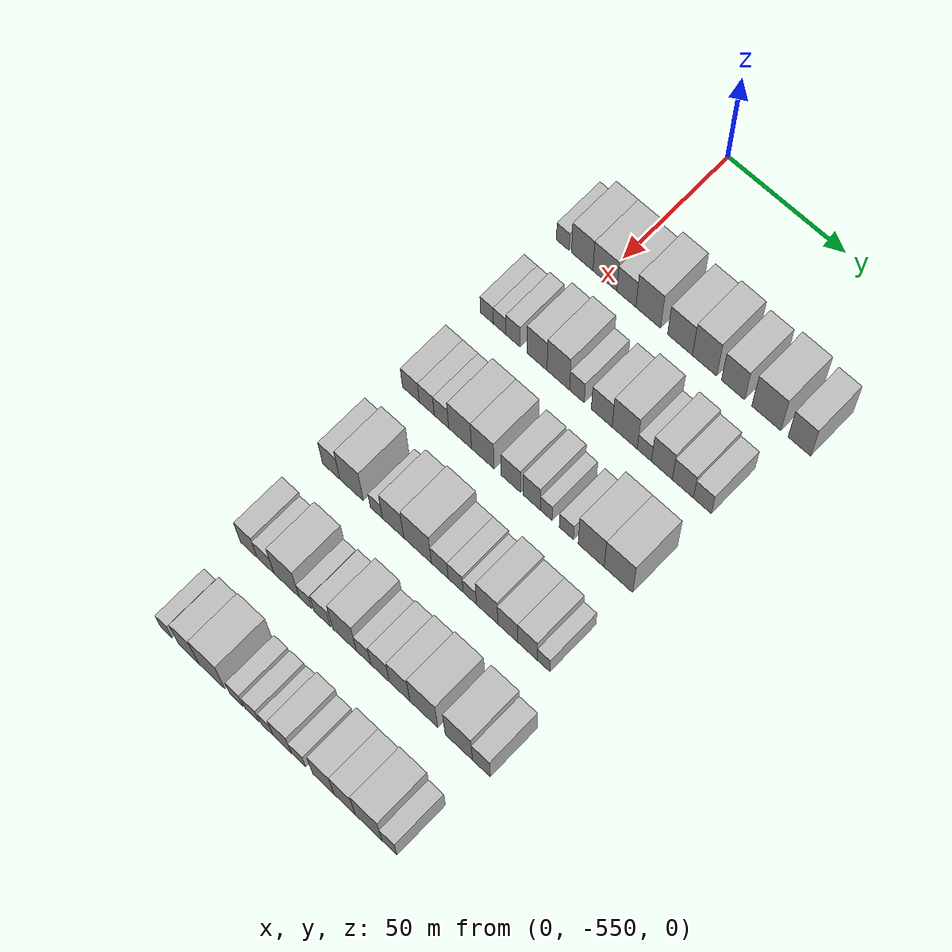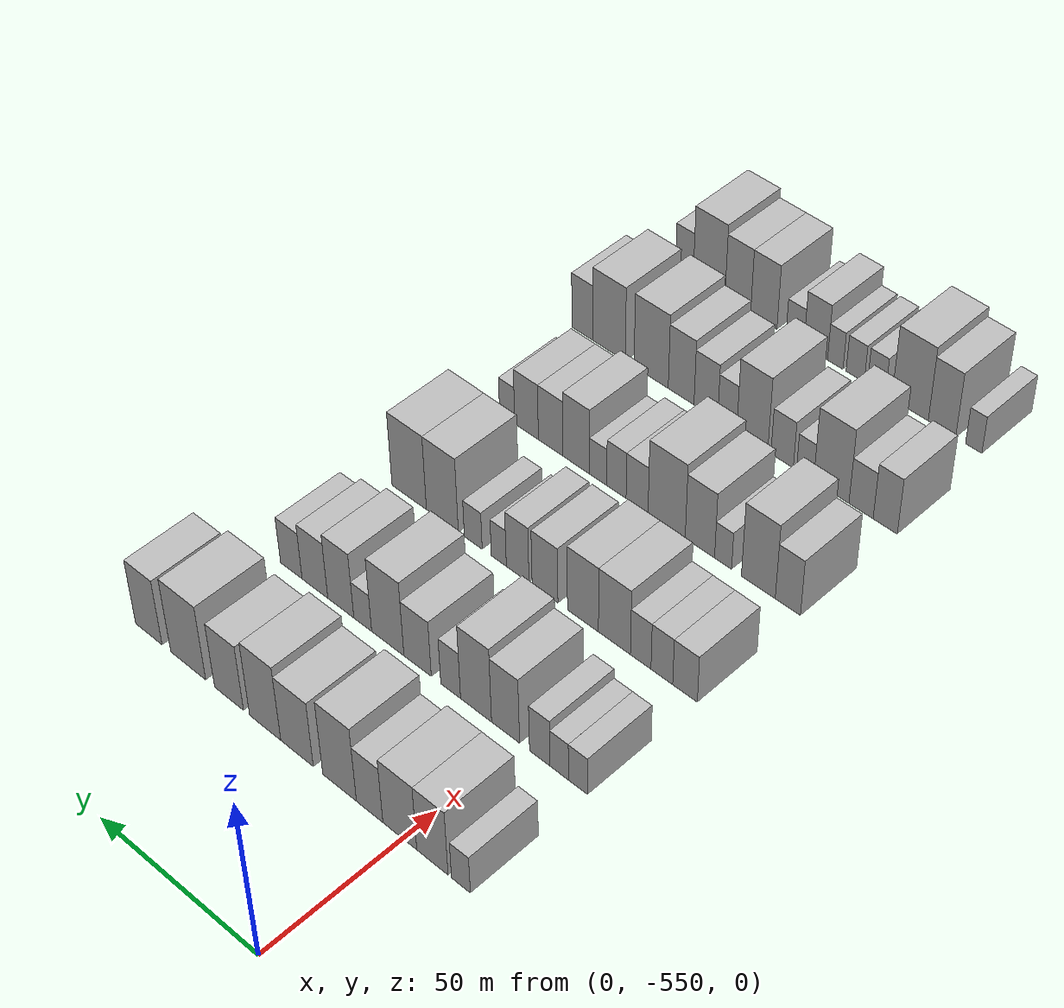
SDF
<sdf version="1.6">
 <world name="default">
  <model name="building_1">
   <static>1</static>
   <pose>50.0000 -567.2301 0 0.000000 0.000000 0.000000</pose>
   <link name="link">
    <pose>0 0 6.00 0 0 0</pose>
    <collision name="collision"><geometry><box><size>20.0000 5.5399 12.0000</size></box></geometry></collision>
    <visual name="visual">
     <cast_shadows>0</cast_shadows>
     <geometry><box><size>20.0000 5.5399 12.0000</size></box></geometry>
     <material>
      <script>
       <uri>model://HANNAS_wall/materials/scripts</uri>
       <uri>model://HANNAS_wall/materials/textures</uri>
       <name>vrc/HANNAS_wall</name>
      </script>
     </material>
    </visual>
   </link>
  </model>
  <model name="building_2">
   <static>1</static>
   <pose>50.0000 -558.8045 0 0.000000 0.000000 0.000000</pose>
   <link name="link">
    <pose>0 0 10.50 0 0 0</pose>
    <collision name="collision"><geometry><box><size>20.0000 9.3112 21.0000</size></box></geometry></collision>
    <visual name="visual">
     <cast_shadows>0</cast_shadows>
     <geometry><box><size>20.0000 9.3112 21.0000</size></box></geometry>
     <material>
      <script>
       <uri>model://HANNAS_wall/materials/scripts</uri>
       <uri>model://HANNAS_wall/materials/textures</uri>
       <name>vrc/HANNAS_wall</name>
      </script>
     </material>
    </visual>
   </link>
  </model>
  <model name="building_3">
   <static>1</static>
   <pose>50.0000 -549.0087 0 0.000000 0.000000 0.000000</pose>
   <link name="link">
    <pose>0 0 10.50 0 0 0</pose>
    <collision name="collision"><geometry><box><size>20.0000 10.2805 21.0000</size></box></geometry></collision>
    <visual name="visual">
     <cast_shadows>0</cast_shadows>
     <geometry><box><size>20.0000 10.2805 21.0000</size></box></geometry>
     <material>
      <script>
       <uri>model://HANNAS_wall/materials/scripts</uri>
       <uri>model://HANNAS_wall/materials/textures</uri>
       <name>vrc/HANNAS_wall</name>
      </script>
     </material>
    </visual>
   </link>
  </model>
  <model name="building_4">
   <static>1</static>
   <pose>50.0000 -539.7940 0 0.000000 0.000000 0.000000</pose>
   <link name="link">
    <pose>0 0 9.00 0 0 0</pose>
    <collision name="collision"><geometry><box><size>20.0000 8.1488 18.0000</size></box></geometry></collision>
    <visual name="visual">
     <cast_shadows>0</cast_shadows>
     <geometry><box><size>20.0000 8.1488 18.0000</size></box></geometry>
     <material>
      <script>
       <uri>model://HANNAS_wall/materials/scripts</uri>
       <uri>model://HANNAS_wall/materials/textures</uri>
       <name>vrc/HANNAS_wall</name>
      </script>
     </material>
    </visual>
   </link>
  </model>
  <model name="building_5">
   <static>1</static>
   <pose>50.0000 -530.4529 0 0.000000 0.000000 0.000000</pose>
   <link name="link">
    <pose>0 0 12.00 0 0 0</pose>
    <collision name="collision"><geometry><box><size>20.0000 10.5335 24.0000</size></box></geometry></collision>
    <visual name="visual">
     <cast_shadows>0</cast_shadows>
     <geometry><box><size>20.0000 10.5335 24.0000</size></box></geometry>
     <material>
      <script>
       <uri>model://HANNAS_wall/materials/scripts</uri>
       <uri>model://HANNAS_wall/materials/textures</uri>
       <name>vrc/HANNAS_wall</name>
      </script>
     </material>
    </visual>
   </link>
  </model>
  <model name="building_6">
   <static>1</static>
   <pose>50.0000 -516.9666 0 0.000000 0.000000 0.000000</pose>
   <link name="link">
    <pose>0 0 10.50 0 0 0</pose>
    <collision name="collision"><geometry><box><size>20.0000 10.4390 21.0000</size></box></geometry></collision>
    <visual name="visual">
     <cast_shadows>0</cast_shadows>
     <geometry><box><size>20.0000 10.4390 21.0000</size></box></geometry>
     <material>
      <script>
       <uri>model://HANNAS_wall/materials/scripts</uri>
       <uri>model://HANNAS_wall/materials/textures</uri>
       <name>vrc/HANNAS_wall</name>
      </script>
     </material>
    </visual>
   </link>
  </model>
  <model name="building_7">
   <static>1</static>
   <pose>50.0000 -506.6521 0 0.000000 0.000000 0.000000</pose>
   <link name="link">
    <pose>0 0 12.00 0 0 0</pose>
    <collision name="collision"><geometry><box><size>20.0000 10.1902 24.0000</size></box></geometry></collision>
    <visual name="visual">
     <cast_shadows>0</cast_shadows>
     <geometry><box><size>20.0000 10.1902 24.0000</size></box></geometry>
     <material>
      <script>
       <uri>model://HANNAS_wall/materials/scripts</uri>
       <uri>model://HANNAS_wall/materials/textures</uri>
       <name>vrc/HANNAS_wall</name>
      </script>
     </material>
    </visual>
   </link>
  </model>
  <model name="building_8">
   <static>1</static>
   <pose>50.0000 -494.7407 0 0.000000 0.000000 0.000000</pose>
   <link name="link">
    <pose>0 0 10.50 0 0 0</pose>
    <collision name="collision"><geometry><box><size>20.0000 9.6325 21.0000</size></box></geometry></collision>
    <visual name="visual">
     <cast_shadows>0</cast_shadows>
     <geometry><box><size>20.0000 9.6325 21.0000</size></box></geometry>
     <material>
      <script>
       <uri>model://HANNAS_wall/materials/scripts</uri>
       <uri>model://HANNAS_wall/materials/textures</uri>
       <name>vrc/HANNAS_wall</name>
      </script>
     </material>
    </visual>
   </link>
  </model>
  <model name="building_9">
   <static>1</static>
   <pose>50.0000 -480.9570 0 0.000000 0.000000 0.000000</pose>
   <link name="link">
    <pose>0 0 12.00 0 0 0</pose>
    <collision name="collision"><geometry><box><size>20.0000 11.9348 24.0000</size></box></geometry></collision>
    <visual name="visual">
     <cast_shadows>0</cast_shadows>
     <geometry><box><size>20.0000 11.9348 24.0000</size></box></geometry>
     <material>
      <script>
       <uri>model://HANNAS_wall/materials/scripts</uri>
       <uri>model://HANNAS_wall/materials/textures</uri>
       <name>vrc/HANNAS_wall</name>
      </script>
     </material>
    </visual>
   </link>
  </model>
  <model name="building_10">
   <static>1</static>
   <pose>50.0000 -467.3841 0 0.000000 0.000000 0.000000</pose>
   <link name="link">
    <pose>0 0 10.50 0 0 0</pose>
    <collision name="collision"><geometry><box><size>20.0000 9.2111 21.0000</size></box></geometry></collision>
    <visual name="visual">
     <cast_shadows>0</cast_shadows>
     <geometry><box><size>20.0000 9.2111 21.0000</size></box></geometry>
     <material>
      <script>
       <uri>model://HANNAS_wall/materials/scripts</uri>
       <uri>model://HANNAS_wall/materials/textures</uri>
       <name>vrc/HANNAS_wall</name>
      </script>
     </material>
    </visual>
   </link>
  </model>
  <model name="building_128">
   <static>1</static>
   <pose>85.0000 -567.1914 0 0.000000 0.000000 0.000000</pose>
   <link name="link">
    <pose>0 0 6.00 0 0 0</pose>
    <collision name="collision"><geometry><box><size>20.0000 5.6173 12.0000</size></box></geometry></collision>
    <visual name="visual">
     <cast_shadows>0</cast_shadows>
     <geometry><box><size>20.0000 5.6173 12.0000</size></box></geometry>
     <material>
      <script>
       <uri>model://HANNAS_wall/materials/scripts</uri>
       <uri>model://HANNAS_wall/materials/textures</uri>
       <name>vrc/HANNAS_wall</name>
      </script>
     </material>
    </visual>
   </link>
  </model>
  <model name="building_129">
   <static>1</static>
   <pose>85.0000 -561.6508 0 0.000000 0.000000 0.000000</pose>
   <link name="link">
    <pose>0 0 6.00 0 0 0</pose>
    <collision name="collision"><geometry><box><size>20.0000 5.4638 12.0000</size></box></geometry></collision>
    <visual name="visual">
     <cast_shadows>0</cast_shadows>
     <geometry><box><size>20.0000 5.4638 12.0000</size></box></geometry>
     <material>
      <script>
       <uri>model://HANNAS_wall/materials/scripts</uri>
       <uri>model://HANNAS_wall/materials/textures</uri>
       <name>vrc/HANNAS_wall</name>
      </script>
     </material>
    </visual>
   </link>
  </model>
  <model name="building_130">
   <static>1</static>
   <pose>85.0000 -555.8411 0 0.000000 0.000000 0.000000</pose>
   <link name="link">
    <pose>0 0 7.50 0 0 0</pose>
    <collision name="collision"><geometry><box><size>20.0000 6.1556 15.0000</size></box></geometry></collision>
    <visual name="visual">
     <cast_shadows>0</cast_shadows>
     <geometry><box><size>20.0000 6.1556 15.0000</size></box></geometry>
     <material>
      <script>
       <uri>model://HANNAS_wall/materials/scripts</uri>
       <uri>model://HANNAS_wall/materials/textures</uri>
       <name>vrc/HANNAS_wall</name>
      </script>
     </material>
    </visual>
   </link>
  </model>
  <model name="building_131">
   <static>1</static>
   <pose>85.0000 -545.4832 0 0.000000 0.000000 0.000000</pose>
   <link name="link">
    <pose>0 0 10.50 0 0 0</pose>
    <collision name="collision"><geometry><box><size>20.0000 8.5603 21.0000</size></box></geometry></collision>
    <visual name="visual">
     <cast_shadows>0</cast_shadows>
     <geometry><box><size>20.0000 8.5603 21.0000</size></box></geometry>
     <material>
      <script>
       <uri>model://HANNAS_wall/materials/scripts</uri>
       <uri>model://HANNAS_wall/materials/textures</uri>
       <name>vrc/HANNAS_wall</name>
      </script>
     </material>
    </visual>
   </link>
  </model>
  <model name="building_132">
   <static>1</static>
   <pose>85.0000 -536.3960 0 0.000000 0.000000 0.000000</pose>
   <link name="link">
    <pose>0 0 12.00 0 0 0</pose>
    <collision name="collision"><geometry><box><size>20.0000 9.6140 24.0000</size></box></geometry></collision>
    <visual name="visual">
     <cast_shadows>0</cast_shadows>
     <geometry><box><size>20.0000 9.6140 24.0000</size></box></geometry>
     <material>
      <script>
       <uri>model://HANNAS_wall/materials/scripts</uri>
       <uri>model://HANNAS_wall/materials/textures</uri>
       <name>vrc/HANNAS_wall</name>
      </script>
     </material>
    </visual>
   </link>
  </model>
  <model name="building_133">
   <static>1</static>
   <pose>85.0000 -528.4804 0 0.000000 0.000000 0.000000</pose>
   <link name="link">
    <pose>0 0 7.50 0 0 0</pose>
    <collision name="collision"><geometry><box><size>20.0000 6.2172 15.0000</size></box></geometry></collision>
    <visual name="visual">
     <cast_shadows>0</cast_shadows>
     <geometry><box><size>20.0000 6.2172 15.0000</size></box></geometry>
     <material>
      <script>
       <uri>model://HANNAS_wall/materials/scripts</uri>
       <uri>model://HANNAS_wall/materials/textures</uri>
       <name>vrc/HANNAS_wall</name>
      </script>
     </material>
    </visual>
   </link>
  </model>
  <model name="building_134">
   <static>1</static>
   <pose>85.0000 -517.9956 0 0.000000 0.000000 0.000000</pose>
   <link name="link">
    <pose>0 0 9.00 0 0 0</pose>
    <collision name="collision"><geometry><box><size>20.0000 8.7526 18.0000</size></box></geometry></collision>
    <visual name="visual">
     <cast_shadows>0</cast_shadows>
     <geometry><box><size>20.0000 8.7526 18.0000</size></box></geometry>
     <material>
      <script>
       <uri>model://HANNAS_wall/materials/scripts</uri>
       <uri>model://HANNAS_wall/materials/textures</uri>
       <name>vrc/HANNAS_wall</name>
      </script>
     </material>
    </visual>
   </link>
  </model>
  <model name="building_135">
   <static>1</static>
   <pose>85.0000 -508.3745 0 0.000000 0.000000 0.000000</pose>
   <link name="link">
    <pose>0 0 12.00 0 0 0</pose>
    <collision name="collision"><geometry><box><size>20.0000 10.4895 24.0000</size></box></geometry></collision>
    <visual name="visual">
     <cast_shadows>0</cast_shadows>
     <geometry><box><size>20.0000 10.4895 24.0000</size></box></geometry>
     <material>
      <script>
       <uri>model://HANNAS_wall/materials/scripts</uri>
       <uri>model://HANNAS_wall/materials/textures</uri>
       <name>vrc/HANNAS_wall</name>
      </script>
     </material>
    </visual>
   </link>
  </model>
  <model name="building_136">
   <static>1</static>
   <pose>85.0000 -500.1816 0 0.000000 0.000000 0.000000</pose>
   <link name="link">
    <pose>0 0 6.00 0 0 0</pose>
    <collision name="collision"><geometry><box><size>20.0000 5.8963 12.0000</size></box></geometry></collision>
    <visual name="visual">
     <cast_shadows>0</cast_shadows>
     <geometry><box><size>20.0000 5.8963 12.0000</size></box></geometry>
     <material>
      <script>
       <uri>model://HANNAS_wall/materials/scripts</uri>
       <uri>model://HANNAS_wall/materials/textures</uri>
       <name>vrc/HANNAS_wall</name>
      </script>
     </material>
    </visual>
   </link>
  </model>
  <model name="building_137">
   <static>1</static>
   <pose>85.0000 -492.8940 0 0.000000 0.000000 0.000000</pose>
   <link name="link">
    <pose>0 0 10.50 0 0 0</pose>
    <collision name="collision"><geometry><box><size>20.0000 8.6788 21.0000</size></box></geometry></collision>
    <visual name="visual">
     <cast_shadows>0</cast_shadows>
     <geometry><box><size>20.0000 8.6788 21.0000</size></box></geometry>
     <material>
      <script>
       <uri>model://HANNAS_wall/materials/scripts</uri>
       <uri>model://HANNAS_wall/materials/textures</uri>
       <name>vrc/HANNAS_wall</name>
      </script>
     </material>
    </visual>
   </link>
  </model>
  <model name="building_138">
   <static>1</static>
   <pose>85.0000 -484.2088 0 0.000000 0.000000 0.000000</pose>
   <link name="link">
    <pose>0 0 9.00 0 0 0</pose>
    <collision name="collision"><geometry><box><size>20.0000 8.6916 18.0000</size></box></geometry></collision>
    <visual name="visual">
     <cast_shadows>0</cast_shadows>
     <geometry><box><size>20.0000 8.6916 18.0000</size></box></geometry>
     <material>
      <script>
       <uri>model://HANNAS_wall/materials/scripts</uri>
       <uri>model://HANNAS_wall/materials/textures</uri>
       <name>vrc/HANNAS_wall</name>
      </script>
     </material>
    </visual>
   </link>
  </model>
  <model name="building_139">
   <static>1</static>
   <pose>85.0000 -476.1674 0 0.000000 0.000000 0.000000</pose>
   <link name="link">
    <pose>0 0 7.50 0 0 0</pose>
    <collision name="collision"><geometry><box><size>20.0000 7.3912 15.0000</size></box></geometry></collision>
    <visual name="visual">
     <cast_shadows>0</cast_shadows>
     <geometry><box><size>20.0000 7.3912 15.0000</size></box></geometry>
     <material>
      <script>
       <uri>model://HANNAS_wall/materials/scripts</uri>
       <uri>model://HANNAS_wall/materials/textures</uri>
       <name>vrc/HANNAS_wall</name>
      </script>
     </material>
    </visual>
   </link>
  </model>
  <model name="building_254">
   <static>1</static>
   <pose>120.0000 -566.3509 0 0.000000 0.000000 0.000000</pose>
   <link name="link">
    <pose>0 0 7.50 0 0 0</pose>
    <collision name="collision"><geometry><box><size>20.0000 7.2981 15.0000</size></box></geometry></collision>
    <visual name="visual">
     <cast_shadows>0</cast_shadows>
     <geometry><box><size>20.0000 7.2981 15.0000</size></box></geometry>
     <material>
      <script>
       <uri>model://HANNAS_wall/materials/scripts</uri>
       <uri>model://HANNAS_wall/materials/textures</uri>
       <name>vrc/HANNAS_wall</name>
      </script>
     </material>
    </visual>
   </link>
  </model>
  <model name="building_255">
   <static>1</static>
   <pose>120.0000 -559.4559 0 0.000000 0.000000 0.000000</pose>
   <link name="link">
    <pose>0 0 7.50 0 0 0</pose>
    <collision name="collision"><geometry><box><size>20.0000 6.4919 15.0000</size></box></geometry></collision>
    <visual name="visual">
     <cast_shadows>0</cast_shadows>
     <geometry><box><size>20.0000 6.4919 15.0000</size></box></geometry>
     <material>
      <script>
       <uri>model://HANNAS_wall/materials/scripts</uri>
       <uri>model://HANNAS_wall/materials/textures</uri>
       <name>vrc/HANNAS_wall</name>
      </script>
     </material>
    </visual>
   </link>
  </model>
  <model name="building_256">
   <static>1</static>
   <pose>120.0000 -553.1069 0 0.000000 0.000000 0.000000</pose>
   <link name="link">
    <pose>0 0 7.50 0 0 0</pose>
    <collision name="collision"><geometry><box><size>20.0000 6.2063 15.0000</size></box></geometry></collision>
    <visual name="visual">
     <cast_shadows>0</cast_shadows>
     <geometry><box><size>20.0000 6.2063 15.0000</size></box></geometry>
     <material>
      <script>
       <uri>model://HANNAS_wall/materials/scripts</uri>
       <uri>model://HANNAS_wall/materials/textures</uri>
       <name>vrc/HANNAS_wall</name>
      </script>
     </material>
    </visual>
   </link>
  </model>
  <model name="building_257">
   <static>1</static>
   <pose>120.0000 -545.1004 0 0.000000 0.000000 0.000000</pose>
   <link name="link">
    <pose>0 0 10.50 0 0 0</pose>
    <collision name="collision"><geometry><box><size>20.0000 9.8066 21.0000</size></box></geometry></collision>
    <visual name="visual">
     <cast_shadows>0</cast_shadows>
     <geometry><box><size>20.0000 9.8066 21.0000</size></box></geometry>
     <material>
      <script>
       <uri>model://HANNAS_wall/materials/scripts</uri>
       <uri>model://HANNAS_wall/materials/textures</uri>
       <name>vrc/HANNAS_wall</name>
      </script>
     </material>
    </visual>
   </link>
  </model>
  <model name="building_258">
   <static>1</static>
   <pose>120.0000 -535.3824 0 0.000000 0.000000 0.000000</pose>
   <link name="link">
    <pose>0 0 10.50 0 0 0</pose>
    <collision name="collision"><geometry><box><size>20.0000 9.6294 21.0000</size></box></geometry></collision>
    <visual name="visual">
     <cast_shadows>0</cast_shadows>
     <geometry><box><size>20.0000 9.6294 21.0000</size></box></geometry>
     <material>
      <script>
       <uri>model://HANNAS_wall/materials/scripts</uri>
       <uri>model://HANNAS_wall/materials/textures</uri>
       <name>vrc/HANNAS_wall</name>
      </script>
     </material>
    </visual>
   </link>
  </model>
  <model name="building_259">
   <static>1</static>
   <pose>120.0000 -523.4674 0 0.000000 0.000000 0.000000</pose>
   <link name="link">
    <pose>0 0 9.00 0 0 0</pose>
    <collision name="collision"><geometry><box><size>20.0000 8.2006 18.0000</size></box></geometry></collision>
    <visual name="visual">
     <cast_shadows>0</cast_shadows>
     <geometry><box><size>20.0000 8.2006 18.0000</size></box></geometry>
     <material>
      <script>
       <uri>model://HANNAS_wall/materials/scripts</uri>
       <uri>model://HANNAS_wall/materials/textures</uri>
       <name>vrc/HANNAS_wall</name>
      </script>
     </material>
    </visual>
   </link>
  </model>
  <model name="building_260">
   <static>1</static>
   <pose>120.0000 -514.7231 0 0.000000 0.000000 0.000000</pose>
   <link name="link">
    <pose>0 0 9.00 0 0 0</pose>
    <collision name="collision"><geometry><box><size>20.0000 7.2879 18.0000</size></box></geometry></collision>
    <visual name="visual">
     <cast_shadows>0</cast_shadows>
     <geometry><box><size>20.0000 7.2879 18.0000</size></box></geometry>
     <material>
      <script>
       <uri>model://HANNAS_wall/materials/scripts</uri>
       <uri>model://HANNAS_wall/materials/textures</uri>
       <name>vrc/HANNAS_wall</name>
      </script>
     </material>
    </visual>
   </link>
  </model>
  <model name="building_261">
   <static>1</static>
   <pose>120.0000 -508.6349 0 0.000000 0.000000 0.000000</pose>
   <link name="link">
    <pose>0 0 6.00 0 0 0</pose>
    <collision name="collision"><geometry><box><size>20.0000 4.8887 12.0000</size></box></geometry></collision>
    <visual name="visual">
     <cast_shadows>0</cast_shadows>
     <geometry><box><size>20.0000 4.8887 12.0000</size></box></geometry>
     <material>
      <script>
       <uri>model://HANNAS_wall/materials/scripts</uri>
       <uri>model://HANNAS_wall/materials/textures</uri>
       <name>vrc/HANNAS_wall</name>
      </script>
     </material>
    </visual>
   </link>
  </model>
  <model name="building_262">
   <static>1</static>
   <pose>120.0000 -500.2546 0 0.000000 0.000000 0.000000</pose>
   <link name="link">
    <pose>0 0 6.00 0 0 0</pose>
    <collision name="collision"><geometry><box><size>20.0000 5.8719 12.0000</size></box></geometry></collision>
    <visual name="visual">
     <cast_shadows>0</cast_shadows>
     <geometry><box><size>20.0000 5.8719 12.0000</size></box></geometry>
     <material>
      <script>
       <uri>model://HANNAS_wall/materials/scripts</uri>
       <uri>model://HANNAS_wall/materials/textures</uri>
       <name>vrc/HANNAS_wall</name>
      </script>
     </material>
    </visual>
   </link>
  </model>
  <model name="building_263">
   <static>1</static>
   <pose>120.0000 -489.9701 0 0.000000 0.000000 0.000000</pose>
   <link name="link">
    <pose>0 0 12.00 0 0 0</pose>
    <collision name="collision"><geometry><box><size>20.0000 10.6970 24.0000</size></box></geometry></collision>
    <visual name="visual">
     <cast_shadows>0</cast_shadows>
     <geometry><box><size>20.0000 10.6970 24.0000</size></box></geometry>
     <material>
      <script>
       <uri>model://HANNAS_wall/materials/scripts</uri>
       <uri>model://HANNAS_wall/materials/textures</uri>
       <name>vrc/HANNAS_wall</name>
      </script>
     </material>
    </visual>
   </link>
  </model>
  <model name="building_264">
   <static>1</static>
   <pose>120.0000 -478.7565 0 0.000000 0.000000 0.000000</pose>
   <link name="link">
    <pose>0 0 12.00 0 0 0</pose>
    <collision name="collision"><geometry><box><size>20.0000 11.7301 24.0000</size></box></geometry></collision>
    <visual name="visual">
     <cast_shadows>0</cast_shadows>
     <geometry><box><size>20.0000 11.7301 24.0000</size></box></geometry>
     <material>
      <script>
       <uri>model://HANNAS_wall/materials/scripts</uri>
       <uri>model://HANNAS_wall/materials/textures</uri>
       <name>vrc/HANNAS_wall</name>
      </script>
     </material>
    </visual>
   </link>
  </model>
  <model name="building_381">
   <static>1</static>
   <pose>155.0000 -566.2590 0 0.000000 0.000000 0.000000</pose>
   <link name="link">
    <pose>0 0 9.00 0 0 0</pose>
    <collision name="collision"><geometry><box><size>20.0000 7.4820 18.0000</size></box></geometry></collision>
    <visual name="visual">
     <cast_shadows>0</cast_shadows>
     <geometry><box><size>20.0000 7.4820 18.0000</size></box></geometry>
     <material>
      <script>
       <uri>model://HANNAS_wall/materials/scripts</uri>
       <uri>model://HANNAS_wall/materials/textures</uri>
       <name>vrc/HANNAS_wall</name>
      </script>
     </material>
    </visual>
   </link>
  </model>
  <model name="building_382">
   <static>1</static>
   <pose>155.0000 -557.4216 0 0.000000 0.000000 0.000000</pose>
   <link name="link">
    <pose>0 0 12.00 0 0 0</pose>
    <collision name="collision"><geometry><box><size>20.0000 10.1928 24.0000</size></box></geometry></collision>
    <visual name="visual">
     <cast_shadows>0</cast_shadows>
     <geometry><box><size>20.0000 10.1928 24.0000</size></box></geometry>
     <material>
      <script>
       <uri>model://HANNAS_wall/materials/scripts</uri>
       <uri>model://HANNAS_wall/materials/textures</uri>
       <name>vrc/HANNAS_wall</name>
      </script>
     </material>
    </visual>
   </link>
  </model>
  <model name="building_383">
   <static>1</static>
   <pose>155.0000 -546.7154 0 0.000000 0.000000 0.000000</pose>
   <link name="link">
    <pose>0 0 6.00 0 0 0</pose>
    <collision name="collision"><geometry><box><size>20.0000 5.2197 12.0000</size></box></geometry></collision>
    <visual name="visual">
     <cast_shadows>0</cast_shadows>
     <geometry><box><size>20.0000 5.2197 12.0000</size></box></geometry>
     <material>
      <script>
       <uri>model://HANNAS_wall/materials/scripts</uri>
       <uri>model://HANNAS_wall/materials/textures</uri>
       <name>vrc/HANNAS_wall</name>
      </script>
     </material>
    </visual>
   </link>
  </model>
  <model name="building_384">
   <static>1</static>
   <pose>155.0000 -539.5505 0 0.000000 0.000000 0.000000</pose>
   <link name="link">
    <pose>0 0 10.50 0 0 0</pose>
    <collision name="collision"><geometry><box><size>20.0000 9.1101 21.0000</size></box></geometry></collision>
    <visual name="visual">
     <cast_shadows>0</cast_shadows>
     <geometry><box><size>20.0000 9.1101 21.0000</size></box></geometry>
     <material>
      <script>
       <uri>model://HANNAS_wall/materials/scripts</uri>
       <uri>model://HANNAS_wall/materials/textures</uri>
       <name>vrc/HANNAS_wall</name>
      </script>
     </material>
    </visual>
   </link>
  </model>
  <model name="building_385">
   <static>1</static>
   <pose>155.0000 -529.1258 0 0.000000 0.000000 0.000000</pose>
   <link name="link">
    <pose>0 0 12.00 0 0 0</pose>
    <collision name="collision"><geometry><box><size>20.0000 11.7393 24.0000</size></box></geometry></collision>
    <visual name="visual">
     <cast_shadows>0</cast_shadows>
     <geometry><box><size>20.0000 11.7393 24.0000</size></box></geometry>
     <material>
      <script>
       <uri>model://HANNAS_wall/materials/scripts</uri>
       <uri>model://HANNAS_wall/materials/textures</uri>
       <name>vrc/HANNAS_wall</name>
      </script>
     </material>
    </visual>
   </link>
  </model>
  <model name="building_386">
   <static>1</static>
   <pose>155.0000 -519.7397 0 0.000000 0.000000 0.000000</pose>
   <link name="link">
    <pose>0 0 7.50 0 0 0</pose>
    <collision name="collision"><geometry><box><size>20.0000 7.0328 15.0000</size></box></geometry></collision>
    <visual name="visual">
     <cast_shadows>0</cast_shadows>
     <geometry><box><size>20.0000 7.0328 15.0000</size></box></geometry>
     <material>
      <script>
       <uri>model://HANNAS_wall/materials/scripts</uri>
       <uri>model://HANNAS_wall/materials/textures</uri>
       <name>vrc/HANNAS_wall</name>
      </script>
     </material>
    </visual>
   </link>
  </model>
  <model name="building_387">
   <static>1</static>
   <pose>155.0000 -513.0978 0 0.000000 0.000000 0.000000</pose>
   <link name="link">
    <pose>0 0 7.50 0 0 0</pose>
    <collision name="collision"><geometry><box><size>20.0000 6.2511 15.0000</size></box></geometry></collision>
    <visual name="visual">
     <cast_shadows>0</cast_shadows>
     <geometry><box><size>20.0000 6.2511 15.0000</size></box></geometry>
     <material>
      <script>
       <uri>model://HANNAS_wall/materials/scripts</uri>
       <uri>model://HANNAS_wall/materials/textures</uri>
       <name>vrc/HANNAS_wall</name>
      </script>
     </material>
    </visual>
   </link>
  </model>
  <model name="building_388">
   <static>1</static>
   <pose>155.0000 -507.1714 0 0.000000 0.000000 0.000000</pose>
   <link name="link">
    <pose>0 0 6.00 0 0 0</pose>
    <collision name="collision"><geometry><box><size>20.0000 5.6018 12.0000</size></box></geometry></collision>
    <visual name="visual">
     <cast_shadows>0</cast_shadows>
     <geometry><box><size>20.0000 5.6018 12.0000</size></box></geometry>
     <material>
      <script>
       <uri>model://HANNAS_wall/materials/scripts</uri>
       <uri>model://HANNAS_wall/materials/textures</uri>
       <name>vrc/HANNAS_wall</name>
      </script>
     </material>
    </visual>
   </link>
  </model>
  <model name="building_389">
   <static>1</static>
   <pose>155.0000 -499.9572 0 0.000000 0.000000 0.000000</pose>
   <link name="link">
    <pose>0 0 10.50 0 0 0</pose>
    <collision name="collision"><geometry><box><size>20.0000 8.8266 21.0000</size></box></geometry></collision>
    <visual name="visual">
     <cast_shadows>0</cast_shadows>
     <geometry><box><size>20.0000 8.8266 21.0000</size></box></geometry>
     <material>
      <script>
       <uri>model://HANNAS_wall/materials/scripts</uri>
       <uri>model://HANNAS_wall/materials/textures</uri>
       <name>vrc/HANNAS_wall</name>
      </script>
     </material>
    </visual>
   </link>
  </model>
  <model name="building_390">
   <static>1</static>
   <pose>155.0000 -491.4320 0 0.000000 0.000000 0.000000</pose>
   <link name="link">
    <pose>0 0 9.00 0 0 0</pose>
    <collision name="collision"><geometry><box><size>20.0000 8.2238 18.0000</size></box></geometry></collision>
    <visual name="visual">
     <cast_shadows>0</cast_shadows>
     <geometry><box><size>20.0000 8.2238 18.0000</size></box></geometry>
     <material>
      <script>
       <uri>model://HANNAS_wall/materials/scripts</uri>
       <uri>model://HANNAS_wall/materials/textures</uri>
       <name>vrc/HANNAS_wall</name>
      </script>
     </material>
    </visual>
   </link>
  </model>
  <model name="building_391">
   <static>1</static>
   <pose>155.0000 -483.3103 0 0.000000 0.000000 0.000000</pose>
   <link name="link">
    <pose>0 0 9.00 0 0 0</pose>
    <collision name="collision"><geometry><box><size>20.0000 8.0195 18.0000</size></box></geometry></collision>
    <visual name="visual">
     <cast_shadows>0</cast_shadows>
     <geometry><box><size>20.0000 8.0195 18.0000</size></box></geometry>
     <material>
      <script>
       <uri>model://HANNAS_wall/materials/scripts</uri>
       <uri>model://HANNAS_wall/materials/textures</uri>
       <name>vrc/HANNAS_wall</name>
      </script>
     </material>
    </visual>
   </link>
  </model>
  <model name="building_392">
   <static>1</static>
   <pose>155.0000 -476.7066 0 0.000000 0.000000 0.000000</pose>
   <link name="link">
    <pose>0 0 6.00 0 0 0</pose>
    <collision name="collision"><geometry><box><size>20.0000 5.1880 12.0000</size></box></geometry></collision>
    <visual name="visual">
     <cast_shadows>0</cast_shadows>
     <geometry><box><size>20.0000 5.1880 12.0000</size></box></geometry>
     <material>
      <script>
       <uri>model://HANNAS_wall/materials/scripts</uri>
       <uri>model://HANNAS_wall/materials/textures</uri>
       <name>vrc/HANNAS_wall</name>
      </script>
     </material>
    </visual>
   </link>
  </model>
  <model name="building_512">
   <static>1</static>
   <pose>190.0000 -566.3855 0 0.000000 0.000000 0.000000</pose>
   <link name="link">
    <pose>0 0 9.00 0 0 0</pose>
    <collision name="collision"><geometry><box><size>20.0000 7.2291 18.0000</size></box></geometry></collision>
    <visual name="visual">
     <cast_shadows>0</cast_shadows>
     <geometry><box><size>20.0000 7.2291 18.0000</size></box></geometry>
     <material>
      <script>
       <uri>model://HANNAS_wall/materials/scripts</uri>
       <uri>model://HANNAS_wall/materials/textures</uri>
       <name>vrc/HANNAS_wall</name>
      </script>
     </material>
    </visual>
   </link>
  </model>
  <model name="building_513">
   <static>1</static>
   <pose>190.0000 -559.1103 0 0.000000 0.000000 0.000000</pose>
   <link name="link">
    <pose>0 0 7.50 0 0 0</pose>
    <collision name="collision"><geometry><box><size>20.0000 7.3212 15.0000</size></box></geometry></collision>
    <visual name="visual">
     <cast_shadows>0</cast_shadows>
     <geometry><box><size>20.0000 7.3212 15.0000</size></box></geometry>
     <material>
      <script>
       <uri>model://HANNAS_wall/materials/scripts</uri>
       <uri>model://HANNAS_wall/materials/textures</uri>
       <name>vrc/HANNAS_wall</name>
      </script>
     </material>
    </visual>
   </link>
  </model>
  <model name="building_514">
   <static>1</static>
   <pose>190.0000 -550.0275 0 0.000000 0.000000 0.000000</pose>
   <link name="link">
    <pose>0 0 12.00 0 0 0</pose>
    <collision name="collision"><geometry><box><size>20.0000 10.8444 24.0000</size></box></geometry></collision>
    <visual name="visual">
     <cast_shadows>0</cast_shadows>
     <geometry><box><size>20.0000 10.8444 24.0000</size></box></geometry>
     <material>
      <script>
       <uri>model://HANNAS_wall/materials/scripts</uri>
       <uri>model://HANNAS_wall/materials/textures</uri>
       <name>vrc/HANNAS_wall</name>
      </script>
     </material>
    </visual>
   </link>
  </model>
  <model name="building_515">
   <static>1</static>
   <pose>190.0000 -541.9521 0 0.000000 0.000000 0.000000</pose>
   <link name="link">
    <pose>0 0 6.00 0 0 0</pose>
    <collision name="collision"><geometry><box><size>20.0000 5.3064 12.0000</size></box></geometry></collision>
    <visual name="visual">
     <cast_shadows>0</cast_shadows>
     <geometry><box><size>20.0000 5.3064 12.0000</size></box></geometry>
     <material>
      <script>
       <uri>model://HANNAS_wall/materials/scripts</uri>
       <uri>model://HANNAS_wall/materials/textures</uri>
       <name>vrc/HANNAS_wall</name>
      </script>
     </material>
    </visual>
   </link>
  </model>
  <model name="building_516">
   <static>1</static>
   <pose>190.0000 -534.7783 0 0.000000 0.000000 0.000000</pose>
   <link name="link">
    <pose>0 0 7.50 0 0 0</pose>
    <collision name="collision"><geometry><box><size>20.0000 7.0413 15.0000</size></box></geometry></collision>
    <visual name="visual">
     <cast_shadows>0</cast_shadows>
     <geometry><box><size>20.0000 7.0413 15.0000</size></box></geometry>
     <material>
      <script>
       <uri>model://HANNAS_wall/materials/scripts</uri>
       <uri>model://HANNAS_wall/materials/textures</uri>
       <name>vrc/HANNAS_wall</name>
      </script>
     </material>
    </visual>
   </link>
  </model>
  <model name="building_517">
   <static>1</static>
   <pose>190.0000 -525.2911 0 0.000000 0.000000 0.000000</pose>
   <link name="link">
    <pose>0 0 12.00 0 0 0</pose>
    <collision name="collision"><geometry><box><size>20.0000 9.9332 24.0000</size></box></geometry></collision>
    <visual name="visual">
     <cast_shadows>0</cast_shadows>
     <geometry><box><size>20.0000 9.9332 24.0000</size></box></geometry>
     <material>
      <script>
       <uri>model://HANNAS_wall/materials/scripts</uri>
       <uri>model://HANNAS_wall/materials/textures</uri>
       <name>vrc/HANNAS_wall</name>
      </script>
     </material>
    </visual>
   </link>
  </model>
  <model name="building_518">
   <static>1</static>
   <pose>190.0000 -517.2546 0 0.000000 0.000000 0.000000</pose>
   <link name="link">
    <pose>0 0 7.50 0 0 0</pose>
    <collision name="collision"><geometry><box><size>20.0000 6.1396 15.0000</size></box></geometry></collision>
    <visual name="visual">
     <cast_shadows>0</cast_shadows>
     <geometry><box><size>20.0000 6.1396 15.0000</size></box></geometry>
     <material>
      <script>
       <uri>model://HANNAS_wall/materials/scripts</uri>
       <uri>model://HANNAS_wall/materials/textures</uri>
       <name>vrc/HANNAS_wall</name>
      </script>
     </material>
    </visual>
   </link>
  </model>
  <model name="building_519">
   <static>1</static>
   <pose>190.0000 -510.3227 0 0.000000 0.000000 0.000000</pose>
   <link name="link">
    <pose>0 0 9.00 0 0 0</pose>
    <collision name="collision"><geometry><box><size>20.0000 7.7242 18.0000</size></box></geometry></collision>
    <visual name="visual">
     <cast_shadows>0</cast_shadows>
     <geometry><box><size>20.0000 7.7242 18.0000</size></box></geometry>
     <material>
      <script>
       <uri>model://HANNAS_wall/materials/scripts</uri>
       <uri>model://HANNAS_wall/materials/textures</uri>
       <name>vrc/HANNAS_wall</name>
      </script>
     </material>
    </visual>
   </link>
  </model>
  <model name="building_520">
   <static>1</static>
   <pose>190.0000 -502.1985 0 0.000000 0.000000 0.000000</pose>
   <link name="link">
    <pose>0 0 10.50 0 0 0</pose>
    <collision name="collision"><geometry><box><size>20.0000 8.5243 21.0000</size></box></geometry></collision>
    <visual name="visual">
     <cast_shadows>0</cast_shadows>
     <geometry><box><size>20.0000 8.5243 21.0000</size></box></geometry>
     <material>
      <script>
       <uri>model://HANNAS_wall/materials/scripts</uri>
       <uri>model://HANNAS_wall/materials/textures</uri>
       <name>vrc/HANNAS_wall</name>
      </script>
     </material>
    </visual>
   </link>
  </model>
  <model name="building_521">
   <static>1</static>
   <pose>190.0000 -492.2063 0 0.000000 0.000000 0.000000</pose>
   <link name="link">
    <pose>0 0 12.00 0 0 0</pose>
    <collision name="collision"><geometry><box><size>20.0000 11.4602 24.0000</size></box></geometry></collision>
    <visual name="visual">
     <cast_shadows>0</cast_shadows>
     <geometry><box><size>20.0000 11.4602 24.0000</size></box></geometry>
     <material>
      <script>
       <uri>model://HANNAS_wall/materials/scripts</uri>
       <uri>model://HANNAS_wall/materials/textures</uri>
       <name>vrc/HANNAS_wall</name>
      </script>
     </material>
    </visual>
   </link>
  </model>
  <model name="building_522">
   <static>1</static>
   <pose>190.0000 -477.8960 0 0.000000 0.000000 0.000000</pose>
   <link name="link">
    <pose>0 0 12.00 0 0 0</pose>
    <collision name="collision"><geometry><box><size>20.0000 11.1603 24.0000</size></box></geometry></collision>
    <visual name="visual">
     <cast_shadows>0</cast_shadows>
     <geometry><box><size>20.0000 11.1603 24.0000</size></box></geometry>
     <material>
      <script>
       <uri>model://HANNAS_wall/materials/scripts</uri>
       <uri>model://HANNAS_wall/materials/textures</uri>
       <name>vrc/HANNAS_wall</name>
      </script>
     </material>
    </visual>
   </link>
  </model>
  <model name="building_523">
   <static>1</static>
   <pose>190.0000 -468.7041 0 0.000000 0.000000 0.000000</pose>
   <link name="link">
    <pose>0 0 9.00 0 0 0</pose>
    <collision name="collision"><geometry><box><size>20.0000 7.2235 18.0000</size></box></geometry></collision>
    <visual name="visual">
     <cast_shadows>0</cast_shadows>
     <geometry><box><size>20.0000 7.2235 18.0000</size></box></geometry>
     <material>
      <script>
       <uri>model://HANNAS_wall/materials/scripts</uri>
       <uri>model://HANNAS_wall/materials/textures</uri>
       <name>vrc/HANNAS_wall</name>
      </script>
     </material>
    </visual>
   </link>
  </model>
  <model name="building_636">
   <static>1</static>
   <pose>225.0000 -565.5358 0 0.000000 0.000000 0.000000</pose>
   <link name="link">
    <pose>0 0 6.00 0 0 0</pose>
    <collision name="collision"><geometry><box><size>20.0000 4.9284 12.0000</size></box></geometry></collision>
    <visual name="visual">
     <cast_shadows>0</cast_shadows>
     <geometry><box><size>20.0000 4.9284 12.0000</size></box></geometry>
     <material>
      <script>
       <uri>model://HANNAS_wall/materials/scripts</uri>
       <uri>model://HANNAS_wall/materials/textures</uri>
       <name>vrc/HANNAS_wall</name>
      </script>
     </material>
    </visual>
   </link>
  </model>
  <model name="building_637">
   <static>1</static>
   <pose>225.0000 -555.8710 0 0.000000 0.000000 0.000000</pose>
   <link name="link">
    <pose>0 0 10.50 0 0 0</pose>
    <collision name="collision"><geometry><box><size>20.0000 8.4012 21.0000</size></box></geometry></collision>
    <visual name="visual">
     <cast_shadows>0</cast_shadows>
     <geometry><box><size>20.0000 8.4012 21.0000</size></box></geometry>
     <material>
      <script>
       <uri>model://HANNAS_wall/materials/scripts</uri>
       <uri>model://HANNAS_wall/materials/textures</uri>
       <name>vrc/HANNAS_wall</name>
      </script>
     </material>
    </visual>
   </link>
  </model>
  <model name="building_638">
   <static>1</static>
   <pose>225.0000 -545.9994 0 0.000000 0.000000 0.000000</pose>
   <link name="link">
    <pose>0 0 12.00 0 0 0</pose>
    <collision name="collision"><geometry><box><size>20.0000 11.3421 24.0000</size></box></geometry></collision>
    <visual name="visual">
     <cast_shadows>0</cast_shadows>
     <geometry><box><size>20.0000 11.3421 24.0000</size></box></geometry>
     <material>
      <script>
       <uri>model://HANNAS_wall/materials/scripts</uri>
       <uri>model://HANNAS_wall/materials/textures</uri>
       <name>vrc/HANNAS_wall</name>
      </script>
     </material>
    </visual>
   </link>
  </model>
  <model name="building_639">
   <static>1</static>
   <pose>225.0000 -535.4831 0 0.000000 0.000000 0.000000</pose>
   <link name="link">
    <pose>0 0 6.00 0 0 0</pose>
    <collision name="collision"><geometry><box><size>20.0000 5.6906 12.0000</size></box></geometry></collision>
    <visual name="visual">
     <cast_shadows>0</cast_shadows>
     <geometry><box><size>20.0000 5.6906 12.0000</size></box></geometry>
     <material>
      <script>
       <uri>model://HANNAS_wall/materials/scripts</uri>
       <uri>model://HANNAS_wall/materials/textures</uri>
       <name>vrc/HANNAS_wall</name>
      </script>
     </material>
    </visual>
   </link>
  </model>
  <model name="building_640">
   <static>1</static>
   <pose>225.0000 -528.7409 0 0.000000 0.000000 0.000000</pose>
   <link name="link">
    <pose>0 0 6.00 0 0 0</pose>
    <collision name="collision"><geometry><box><size>20.0000 5.7938 12.0000</size></box></geometry></collision>
    <visual name="visual">
     <cast_shadows>0</cast_shadows>
     <geometry><box><size>20.0000 5.7938 12.0000</size></box></geometry>
     <material>
      <script>
       <uri>model://HANNAS_wall/materials/scripts</uri>
       <uri>model://HANNAS_wall/materials/textures</uri>
       <name>vrc/HANNAS_wall</name>
      </script>
     </material>
    </visual>
   </link>
  </model>
  <model name="building_641">
   <static>1</static>
   <pose>225.0000 -522.3447 0 0.000000 0.000000 0.000000</pose>
   <link name="link">
    <pose>0 0 6.00 0 0 0</pose>
    <collision name="collision"><geometry><box><size>20.0000 4.9988 12.0000</size></box></geometry></collision>
    <visual name="visual">
     <cast_shadows>0</cast_shadows>
     <geometry><box><size>20.0000 4.9988 12.0000</size></box></geometry>
     <material>
      <script>
       <uri>model://HANNAS_wall/materials/scripts</uri>
       <uri>model://HANNAS_wall/materials/textures</uri>
       <name>vrc/HANNAS_wall</name>
      </script>
     </material>
    </visual>
   </link>
  </model>
  <model name="building_642">
   <static>1</static>
   <pose>225.0000 -516.0007 0 0.000000 0.000000 0.000000</pose>
   <link name="link">
    <pose>0 0 9.00 0 0 0</pose>
    <collision name="collision"><geometry><box><size>20.0000 7.6891 18.0000</size></box></geometry></collision>
    <visual name="visual">
     <cast_shadows>0</cast_shadows>
     <geometry><box><size>20.0000 7.6891 18.0000</size></box></geometry>
     <material>
      <script>
       <uri>model://HANNAS_wall/materials/scripts</uri>
       <uri>model://HANNAS_wall/materials/textures</uri>
       <name>vrc/HANNAS_wall</name>
      </script>
     </material>
    </visual>
   </link>
  </model>
  <model name="building_643">
   <static>1</static>
   <pose>225.0000 -509.2187 0 0.000000 0.000000 0.000000</pose>
   <link name="link">
    <pose>0 0 6.00 0 0 0</pose>
    <collision name="collision"><geometry><box><size>20.0000 5.8749 12.0000</size></box></geometry></collision>
    <visual name="visual">
     <cast_shadows>0</cast_shadows>
     <geometry><box><size>20.0000 5.8749 12.0000</size></box></geometry>
     <material>
      <script>
       <uri>model://HANNAS_wall/materials/scripts</uri>
       <uri>model://HANNAS_wall/materials/textures</uri>
       <name>vrc/HANNAS_wall</name>
      </script>
     </material>
    </visual>
   </link>
  </model>
  <model name="building_644">
   <static>1</static>
   <pose>225.0000 -498.8787 0 0.000000 0.000000 0.000000</pose>
   <link name="link">
    <pose>0 0 10.50 0 0 0</pose>
    <collision name="collision"><geometry><box><size>20.0000 8.8049 21.0000</size></box></geometry></collision>
    <visual name="visual">
     <cast_shadows>0</cast_shadows>
     <geometry><box><size>20.0000 8.8049 21.0000</size></box></geometry>
     <material>
      <script>
       <uri>model://HANNAS_wall/materials/scripts</uri>
       <uri>model://HANNAS_wall/materials/textures</uri>
       <name>vrc/HANNAS_wall</name>
      </script>
     </material>
    </visual>
   </link>
  </model>
  <model name="building_645">
   <static>1</static>
   <pose>225.0000 -490.1385 0 0.000000 0.000000 0.000000</pose>
   <link name="link">
    <pose>0 0 10.50 0 0 0</pose>
    <collision name="collision"><geometry><box><size>20.0000 8.6755 21.0000</size></box></geometry></collision>
    <visual name="visual">
     <cast_shadows>0</cast_shadows>
     <geometry><box><size>20.0000 8.6755 21.0000</size></box></geometry>
     <material>
      <script>
       <uri>model://HANNAS_wall/materials/scripts</uri>
       <uri>model://HANNAS_wall/materials/textures</uri>
       <name>vrc/HANNAS_wall</name>
      </script>
     </material>
    </visual>
   </link>
  </model>
  <model name="building_646">
   <static>1</static>
   <pose>225.0000 -480.3604 0 0.000000 0.000000 0.000000</pose>
   <link name="link">
    <pose>0 0 12.00 0 0 0</pose>
    <collision name="collision"><geometry><box><size>20.0000 10.8807 24.0000</size></box></geometry></collision>
    <visual name="visual">
     <cast_shadows>0</cast_shadows>
     <geometry><box><size>20.0000 10.8807 24.0000</size></box></geometry>
     <material>
      <script>
       <uri>model://HANNAS_wall/materials/scripts</uri>
       <uri>model://HANNAS_wall/materials/textures</uri>
       <name>vrc/HANNAS_wall</name>
      </script>
     </material>
    </visual>
   </link>
  </model>
  <model name="building_647">
   <static>1</static>
   <pose>225.0000 -471.8449 0 0.000000 0.000000 0.000000</pose>
   <link name="link">
    <pose>0 0 7.50 0 0 0</pose>
    <collision name="collision"><geometry><box><size>20.0000 6.1502 15.0000</size></box></geometry></collision>
    <visual name="visual">
     <cast_shadows>0</cast_shadows>
     <geometry><box><size>20.0000 6.1502 15.0000</size></box></geometry>
     <material>
      <script>
       <uri>model://HANNAS_wall/materials/scripts</uri>
       <uri>model://HANNAS_wall/materials/textures</uri>
       <name>vrc/HANNAS_wall</name>
      </script>
     </material>
    </visual>
   </link>
  </model>
 </world>
</sdf>
